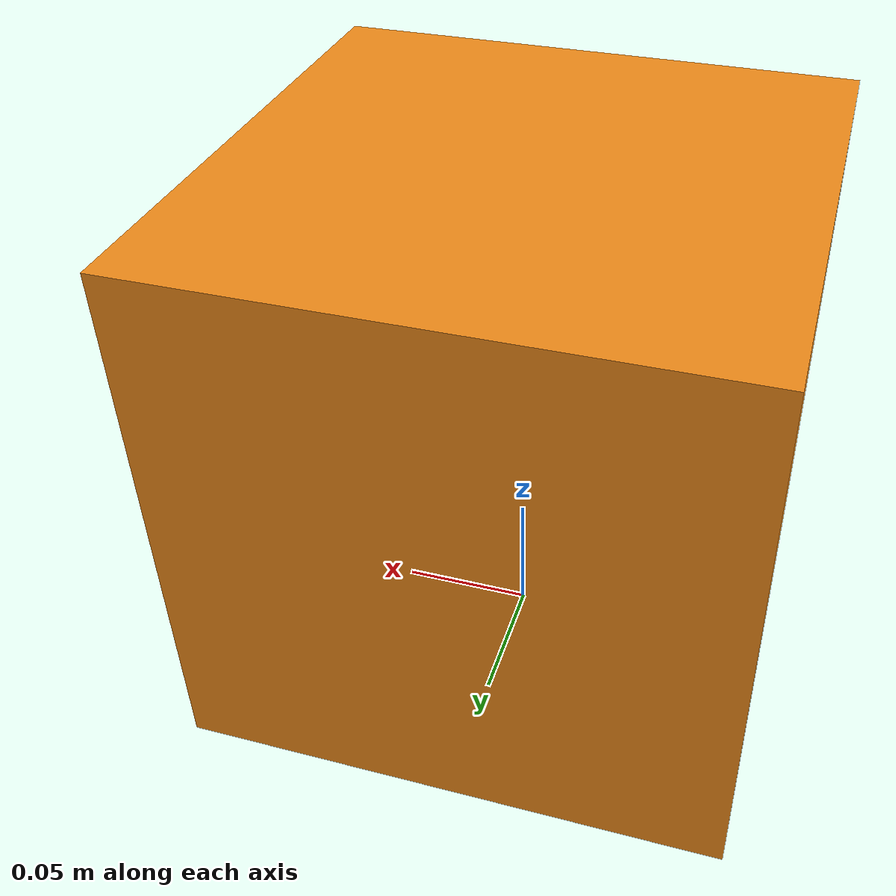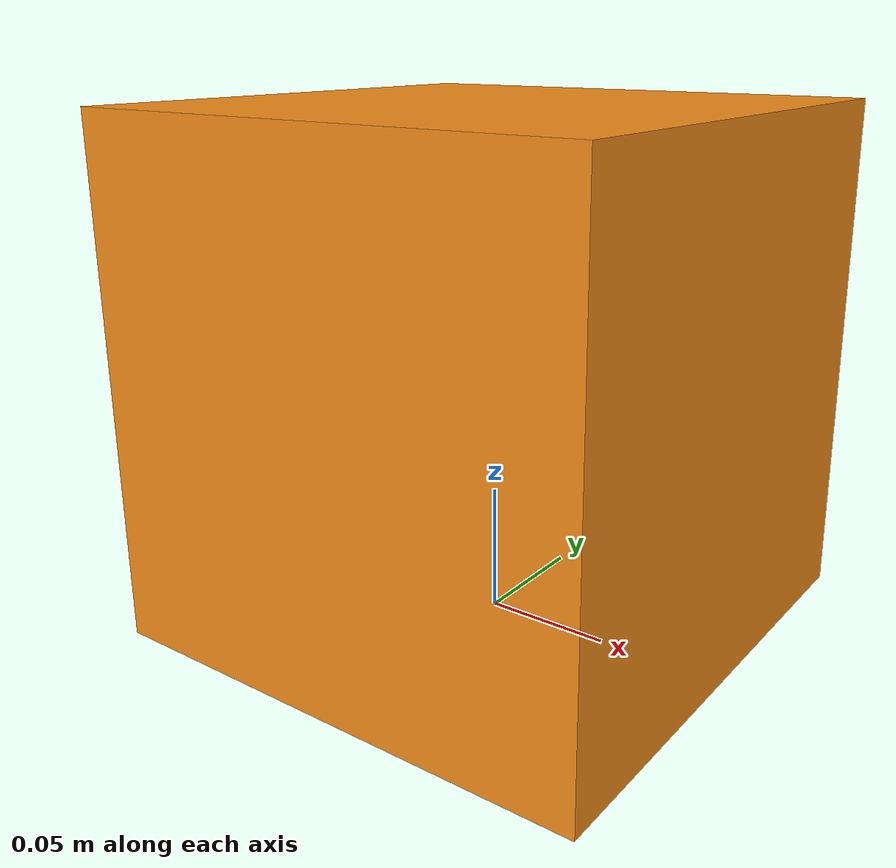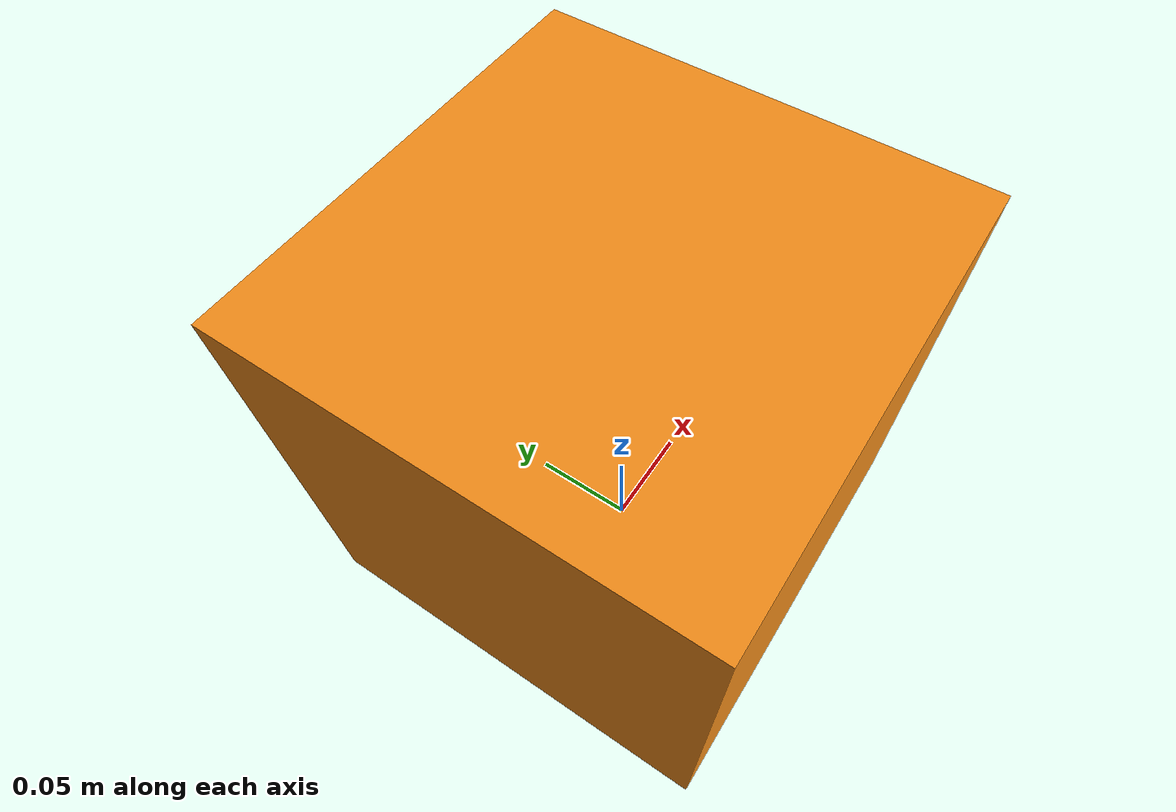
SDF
<?xml version='1.0'?>
<sdf version='1.7'>
  <model name='gps_model'>
    <link name='gps_link'>
      <inertial>
        <pose>0 0 1 0 -0 0</pose>
        <mass>1</mass>
        <inertia>
          <ixx>1</ixx>
          <ixy>0</ixy>
          <ixz>0</ixz>
          <iyy>1</iyy>
          <iyz>0</iyz>
          <izz>1</izz>
        </inertia>
      </inertial>
      <self_collide>0</self_collide>
      <enable_wind>0</enable_wind>
      <kinematic>0</kinematic>
      <pose>0 0 0 0 -0 0</pose>
      <visual name='gps_link_visual'>
        <pose>0 0 0.1 0 -0 0</pose>
        <geometry>
          <box>
            <size>0.2 0.2 0.2</size>
          </box>
        </geometry>
        <material>
          <script>
            <name>Gazebo/Orange</name>
            <uri>file://media/materials/scripts/gazebo.material</uri>
          </script>
          <shader type='pixel'/>
        </material>
        <transparency>0</transparency>
        <cast_shadows>1</cast_shadows>
      </visual>
      <collision name='gps_link_collision'>
        <laser_retro>0</laser_retro>
        <max_contacts>10</max_contacts>
        <pose>0 0 0.1 0 -0 0</pose>
        <geometry>
          <box>
            <size>0.2 0.2 0.2</size>
          </box>
        </geometry>
        <surface>
          <friction>
            <ode>
              <mu>1</mu>
              <mu2>1</mu2>
              <fdir1>0 0 0</fdir1>
              <slip1>0</slip1>
              <slip2>0</slip2>
            </ode>
            <torsional>
              <coefficient>1</coefficient>
              <patch_radius>0</patch_radius>
              <surface_radius>0</surface_radius>
              <use_patch_radius>1</use_patch_radius>
              <ode>
                <slip>0</slip>
              </ode>
            </torsional>
          </friction>
          <bounce>
            <restitution_coefficient>0</restitution_coefficient>
            <threshold>1e+06</threshold>
          </bounce>
          <contact>
            <collide_without_contact>0</collide_without_contact>
            <collide_without_contact_bitmask>1</collide_without_contact_bitmask>
            <collide_bitmask>1</collide_bitmask>
            <ode>
              <soft_cfm>0</soft_cfm>
              <soft_erp>0.2</soft_erp>
              <kp>1e+13</kp>
              <kd>1</kd>
              <max_vel>0.01</max_vel>
              <min_depth>0</min_depth>
            </ode>
            <bullet>
              <split_impulse>1</split_impulse>
              <split_impulse_penetration_threshold>-0.01</split_impulse_penetration_threshold>
              <soft_cfm>0</soft_cfm>
              <soft_erp>0.2</soft_erp>
              <kp>1e+13</kp>
              <kd>1</kd>
            </bullet>
          </contact>
        </surface>
      </collision>
    </link>
    <static>0</static>
    <allow_auto_disable>1</allow_auto_disable>
    <plugin name='gazebo_ros_gps' filename='libhector_gazebo_ros_gps.so'>
      <updateRate>40.0</updateRate>
      <bodyName>gps_link</bodyName>
      <frameId>gps_link</frameId>
      <topicName>/gps/fix</topicName>
      <velocityTopicName>/gps/fix_velocity</velocityTopicName>
      <referenceLatitude>49.9</referenceLatitude>
      <referenceLongitude>8.9</referenceLongitude>
      <referenceHeading>90</referenceHeading>
      <referenceAltitude>10</referenceAltitude>
      <offset>0 0 0</offset>
      <drift>0.001 0.001 0.001</drift>
      <gaussianNoise>0.05 0.05 0.05</gaussianNoise>
      <velocityDrift>0.001 0.001 0.001</velocityDrift>
      <velocityGaussianNoise>0.5 0.5 0.5</velocityGaussianNoise>
      <robotNamespace>/</robotNamespace>
    </plugin>
  </model>
</sdf>
